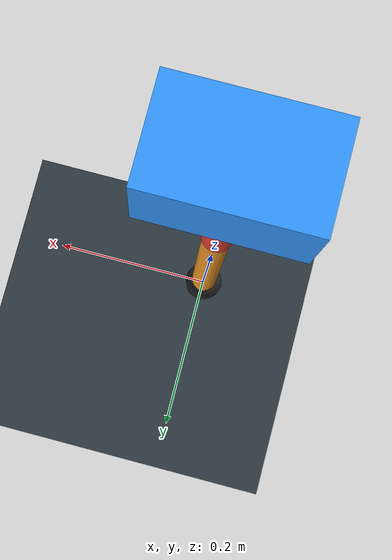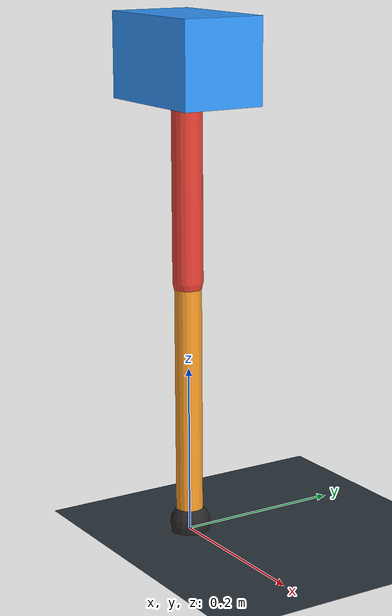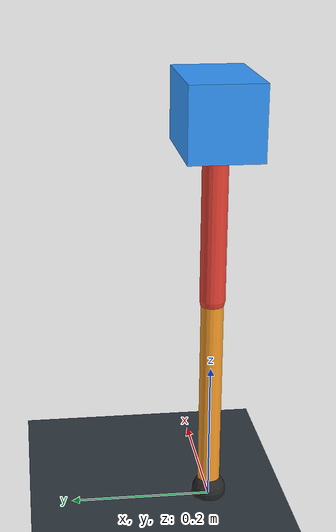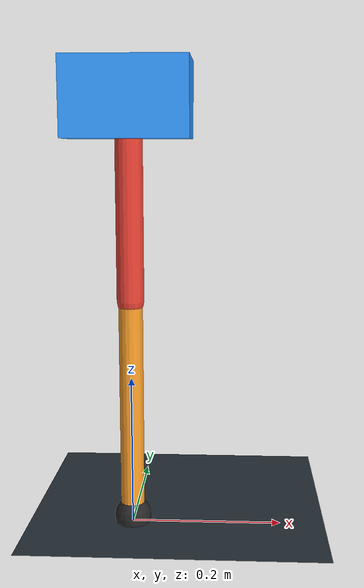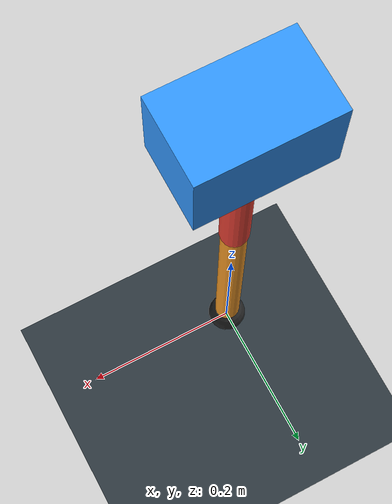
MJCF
<mujoco model="single_axis_two_bar">
  <compiler angle="radian" inertiafromgeom="true"/>
  <option timestep="0.001" integrator="implicitfast" gravity="0 0 -9.81"/>
  <default>
    <joint damping="0.08"/>
    <geom friction="1.2 0.01 0.0001" condim="3"/>
  </default>
  <worldbody>
    <geom name="floor" type="plane" size="5 5 0.1" rgba="0.18 0.22 0.25 1"/>
    <body name="carriage" pos="0 0 0.564530431651317">
      <joint name="pole_slide" type="slide" axis="0 0 1"/>
      <geom name="payload" type="box" size="0.08 0.05 0.05" mass="3.047979901585225" rgba="0.2 0.6 1 1"/>
      <body name="thigh" pos="0 0 0">
        <joint name="hip" type="hinge" axis="0 1 0"/>
        <geom name="thigh_link" type="capsule" fromto="0 0 0 0 0 -0.25970604663208124" size="0.018" mass="0.18504398993798973" rgba="0.9 0.25 0.2 1"/>
        <body name="shank" pos="0 0 -0.25970604663208124">
          <joint name="knee" type="hinge" axis="0 1 0"/>
          <geom name="shank_link" type="capsule" fromto="0 0 0 0 0 -0.2965108932146372" size="0.016" mass="0.21126792946120004" rgba="0.95 0.6 0.15 1"/>
          <geom name="foot" type="sphere" pos="0 0 -0.2965108932146372" size="0.025" mass="0.03" rgba="0.15 0.15 0.15 1"/>
          <site name="toe" pos="0 0 -0.2965108932146372" size="0.008"/>
        </body>
      </body>
    </body>
  </worldbody>
  <actuator>
    <motor name="hip_motor" joint="hip" ctrlrange="-20.94432476937567 20.94432476937567"/>
    <motor name="knee_motor" joint="knee" ctrlrange="-33.08846300225745 33.08846300225745"/>
  </actuator>
</mujoco>
